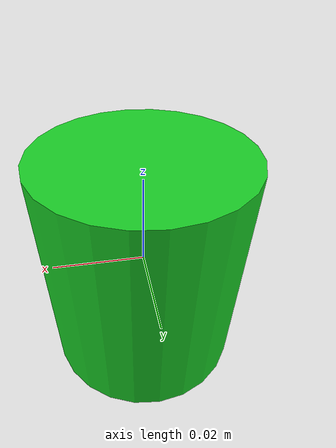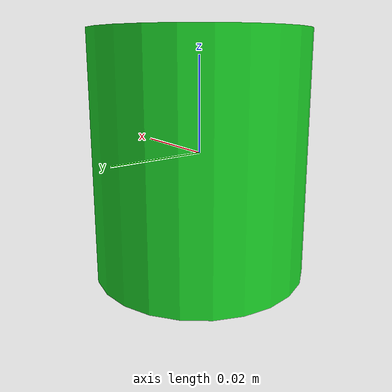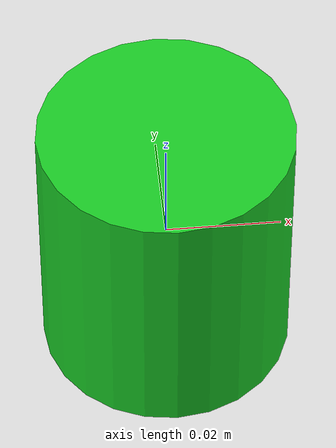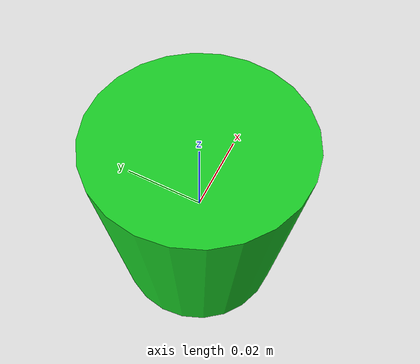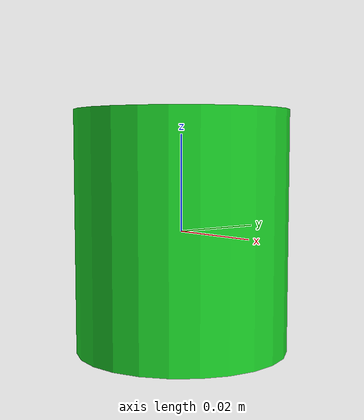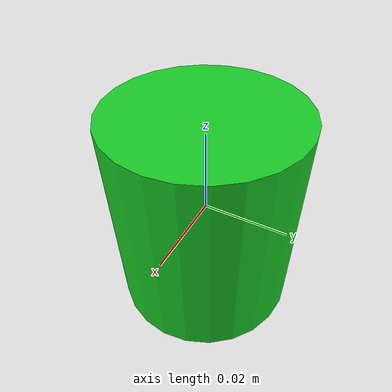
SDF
<?xml version="1.0" ?>
<sdf version="1.9">
  <model name="green_cylinder">
    <link name="link">
      <visual name="visual">
        <geometry>
          <cylinder>
            <radius>0.022</radius>
            <length>0.05</length>
          </cylinder>
        </geometry>
        <material>
          <ambient>0.05 0.55 0.10 1</ambient>
          <diffuse>0.10 0.80 0.15 1</diffuse>
          <specular>0.1 0.4 0.1 1</specular>
        </material>
      </visual>
      <collision name="collision">
        <geometry>
          <cylinder>
            <radius>0.022</radius>
            <length>0.05</length>
          </cylinder>
        </geometry>
        <surface>
          <friction>
            <ode>
              <mu>1.0</mu>
              <mu2>1.0</mu2>
            </ode>
          </friction>
        </surface>
      </collision>
      <inertial>
        <mass>0.05</mass>
        <inertia>
          <ixx>1.25e-5</ixx>
          <iyy>1.25e-5</iyy>
          <izz>1.21e-5</izz>
          <ixy>0</ixy>
          <ixz>0</ixz>
          <iyz>0</iyz>
        </inertia>
      </inertial>
    </link>
    <!-- SIMULATED ATTACHMENT, NOT A PHYSICAL GRASP (Part 3/A8 decision;
         doc/GRASP_DECISION.md). See red_cube.sdf for the full rationale. -->
    <plugin filename="gz-sim-detachable-joint-system"
            name="gz::sim::systems::DetachableJoint">
      <parent_link>link</parent_link>
      <child_model>mycobot_320</child_model>
      <child_link>link6</child_link>
      <attach_topic>/htgspp/green_cylinder/attach</attach_topic>
      <detach_topic>/htgspp/green_cylinder/detach</detach_topic>
      <output_topic>/htgspp/green_cylinder/attached</output_topic>
    </plugin>
  </model>
</sdf>
